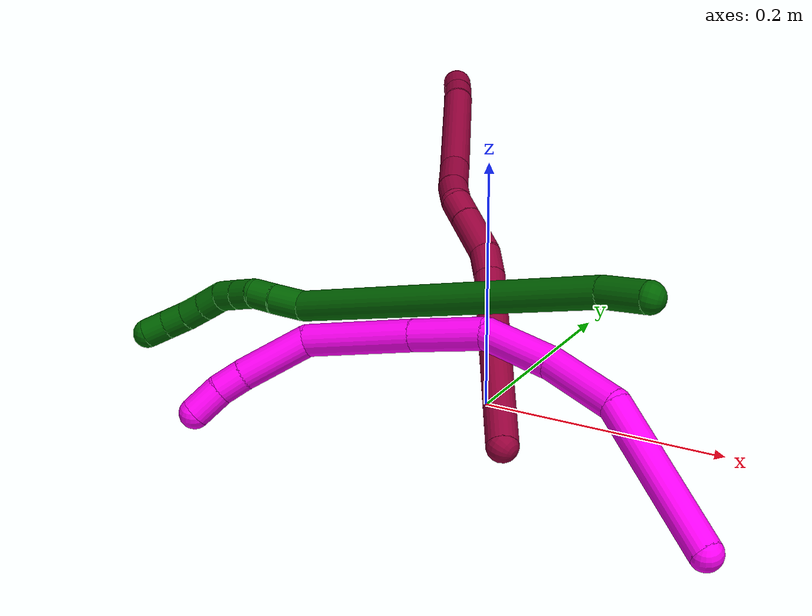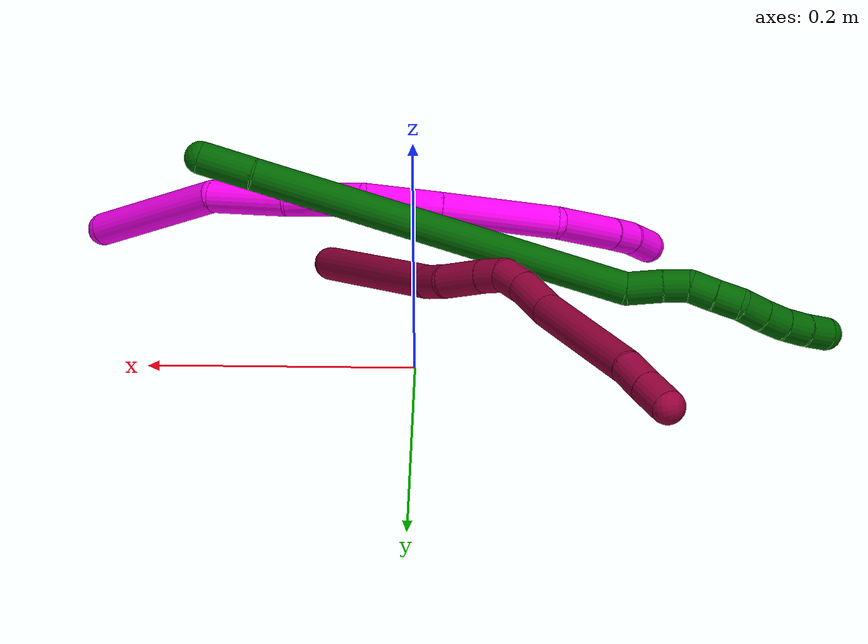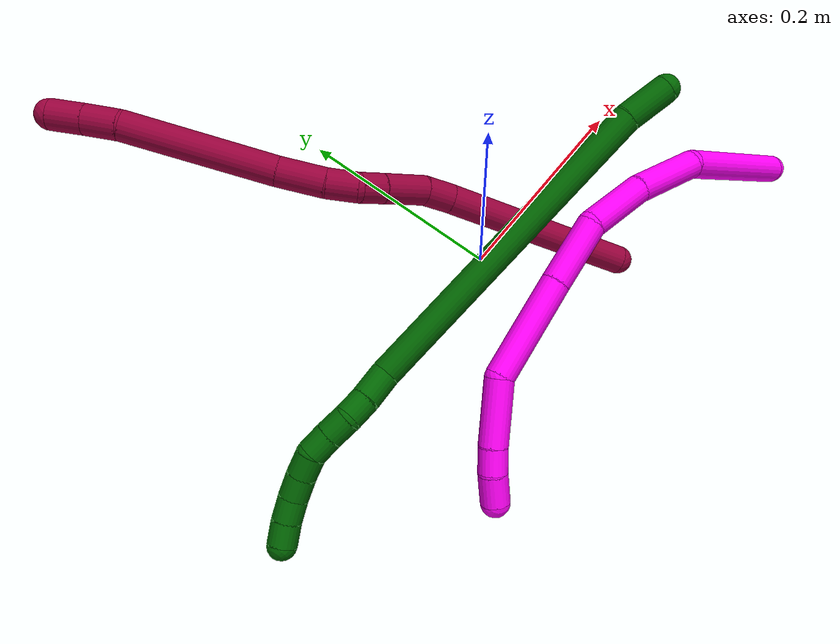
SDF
<sdf version="1.7">
 <world name="default">
  <model name="6">
   <static>0</static>
   <link name="6">
    <collision name="collision-cylinder-e_1_1_4">
     <pose>-0.003329 -0.010603 -0.01772 2.60238 -0.159858 -0.564267</pose>
     <geometry><cylinder><radius>0.0125</radius><length>0.041833</length></cylinder></geometry>
     <surface>
      <friction><ode><mu>1.16</mu><mu2>1.16</mu2><slip1>0</slip1><slip2>0</slip2></ode></friction>
      <contact><ode><kp>1e+06</kp><kd>1</kd><max_vel>0</max_vel><min_depth>0.001</min_depth></ode></contact>
     </surface>
    </collision>
    <visual name="visual-cylinder-e_1_1_4">
     <pose>-0.003329 -0.010603 -0.01772 2.60238 -0.159858 -0.564267</pose>
     <geometry><cylinder><radius>0.0125</radius><length>0.041833</length></cylinder></geometry>
     <material><ambient>0 0.392157 0.003922 1</ambient></material>
    </visual>
    <collision name="collision-cylinder-e_2_4_5">
     <pose>-0.049836 -0.081201 -0.160317 2.69372 -0.302114 -1.1783</pose>
     <geometry><cylinder><radius>0.0125</radius><length>0.290227</length></cylinder></geometry>
     <surface>
      <friction><ode><mu>1.16</mu><mu2>1.16</mu2><slip1>0</slip1><slip2>0</slip2></ode></friction>
      <contact><ode><kp>1e+06</kp><kd>1</kd><max_vel>0</max_vel><min_depth>0.001</min_depth></ode></contact>
     </surface>
    </collision>
    <visual name="visual-cylinder-e_2_4_5">
     <pose>-0.049836 -0.081201 -0.160317 2.69372 -0.302114 -1.1783</pose>
     <geometry><cylinder><radius>0.0125</radius><length>0.290227</length></cylinder></geometry>
     <material><ambient>0 0.392157 0.003922 1</ambient></material>
    </visual>
    <collision name="collision-cylinder-e_3_5_6">
     <pose>-0.094036 -0.143172 -0.298865 2.99809 -0.073921 -0.95028</pose>
     <geometry><cylinder><radius>0.0125</radius><length>0.027702</length></cylinder></geometry>
     <surface>
      <friction><ode><mu>1.16</mu><mu2>1.16</mu2><slip1>0</slip1><slip2>0</slip2></ode></friction>
      <contact><ode><kp>1e+06</kp><kd>1</kd><max_vel>0</max_vel><min_depth>0.001</min_depth></ode></contact>
     </surface>
    </collision>
    <visual name="visual-cylinder-e_3_5_6">
     <pose>-0.094036 -0.143172 -0.298865 2.99809 -0.073921 -0.95028</pose>
     <geometry><cylinder><radius>0.0125</radius><length>0.027702</length></cylinder></geometry>
     <material><ambient>0 0.392157 0.003922 1</ambient></material>
    </visual>
    <collision name="collision-cylinder-e_4_6_7">
     <pose>-0.095685 -0.147588 -0.322265 2.89585 -0.062396 -0.49505</pose>
     <geometry><cylinder><radius>0.0125</radius><length>0.020098</length></cylinder></geometry>
     <surface>
      <friction><ode><mu>1.16</mu><mu2>1.16</mu2><slip1>0</slip1><slip2>0</slip2></ode></friction>
      <contact><ode><kp>1e+06</kp><kd>1</kd><max_vel>0</max_vel><min_depth>0.001</min_depth></ode></contact>
     </surface>
    </collision>
    <visual name="visual-cylinder-e_4_6_7">
     <pose>-0.095685 -0.147588 -0.322265 2.89585 -0.062396 -0.49505</pose>
     <geometry><cylinder><radius>0.0125</radius><length>0.020098</length></cylinder></geometry>
     <material><ambient>0 0.392157 0.003922 1</ambient></material>
    </visual>
    <collision name="collision-cylinder-e_5_7_8">
     <pose>-0.099272 -0.1549 -0.34027 2.60959 -0.298965 -1.00992</pose>
     <geometry><cylinder><radius>0.0125</radius><length>0.020101</length></cylinder></geometry>
     <surface>
      <friction><ode><mu>1.16</mu><mu2>1.16</mu2><slip1>0</slip1><slip2>0</slip2></ode></friction>
      <contact><ode><kp>1e+06</kp><kd>1</kd><max_vel>0</max_vel><min_depth>0.001</min_depth></ode></contact>
     </surface>
    </collision>
    <visual name="visual-cylinder-e_5_7_8">
     <pose>-0.099272 -0.1549 -0.34027 2.60959 -0.298965 -1.00992</pose>
     <geometry><cylinder><radius>0.0125</radius><length>0.020101</length></cylinder></geometry>
     <material><ambient>0 0.392157 0.003922 1</ambient></material>
    </visual>
    <collision name="collision-cylinder-e_6_8_9">
     <pose>-0.105362 -0.164146 -0.357 2.66408 -0.317673 -1.16413</pose>
     <geometry><cylinder><radius>0.0125</radius><length>0.020037</length></cylinder></geometry>
     <surface>
      <friction><ode><mu>1.16</mu><mu2>1.16</mu2><slip1>0</slip1><slip2>0</slip2></ode></friction>
      <contact><ode><kp>1e+06</kp><kd>1</kd><max_vel>0</max_vel><min_depth>0.001</min_depth></ode></contact>
     </surface>
    </collision>
    <visual name="visual-cylinder-e_6_8_9">
     <pose>-0.105362 -0.164146 -0.357 2.66408 -0.317673 -1.16413</pose>
     <geometry><cylinder><radius>0.0125</radius><length>0.020037</length></cylinder></geometry>
     <material><ambient>0 0.392157 0.003922 1</ambient></material>
    </visual>
    <collision name="collision-cylinder-e_7_9_10">
     <pose>-0.114953 -0.17128 -0.372568 2.77153 -0.702509 -2.19714</pose>
     <geometry><cylinder><radius>0.0125</radius><length>0.02</length></cylinder></geometry>
     <surface>
      <friction><ode><mu>1.16</mu><mu2>1.16</mu2><slip1>0</slip1><slip2>0</slip2></ode></friction>
      <contact><ode><kp>1e+06</kp><kd>1</kd><max_vel>0</max_vel><min_depth>0.001</min_depth></ode></contact>
     </surface>
    </collision>
    <visual name="visual-cylinder-e_7_9_10">
     <pose>-0.114953 -0.17128 -0.372568 2.77153 -0.702509 -2.19714</pose>
     <geometry><cylinder><radius>0.0125</radius><length>0.02</length></cylinder></geometry>
     <material><ambient>0 0.392157 0.003922 1</ambient></material>
    </visual>
    <collision name="collision-cylinder-e_8_10_11">
     <pose>-0.127974 -0.17597 -0.386981 2.88303 -0.715556 -2.47229</pose>
     <geometry><cylinder><radius>0.0125</radius><length>0.02</length></cylinder></geometry>
     <surface>
      <friction><ode><mu>1.16</mu><mu2>1.16</mu2><slip1>0</slip1><slip2>0</slip2></ode></friction>
      <contact><ode><kp>1e+06</kp><kd>1</kd><max_vel>0</max_vel><min_depth>0.001</min_depth></ode></contact>
     </surface>
    </collision>
    <visual name="visual-cylinder-e_8_10_11">
     <pose>-0.127974 -0.17597 -0.386981 2.88303 -0.715556 -2.47229</pose>
     <geometry><cylinder><radius>0.0125</radius><length>0.02</length></cylinder></geometry>
     <material><ambient>0 0.392157 0.003922 1</ambient></material>
    </visual>
    <collision name="collision-cylinder-e_9_11_12">
     <pose>-0.140781 -0.178687 -0.402047 3.04062 -0.674609 -2.8554</pose>
     <geometry><cylinder><radius>0.0125</radius><length>0.02</length></cylinder></geometry>
     <surface>
      <friction><ode><mu>1.16</mu><mu2>1.16</mu2><slip1>0</slip1><slip2>0</slip2></ode></friction>
      <contact><ode><kp>1e+06</kp><kd>1</kd><max_vel>0</max_vel><min_depth>0.001</min_depth></ode></contact>
     </surface>
    </collision>
    <visual name="visual-cylinder-e_9_11_12">
     <pose>-0.140781 -0.178687 -0.402047 3.04062 -0.674609 -2.8554</pose>
     <geometry><cylinder><radius>0.0125</radius><length>0.02</length></cylinder></geometry>
     <material><ambient>0 0.392157 0.003922 1</ambient></material>
    </visual>
    <collision name="collision-cylinder-e_10_12_2">
     <pose>-0.153416 -0.179161 -0.417503 -3.10088 -0.693047 3.02894</pose>
     <geometry><cylinder><radius>0.0125</radius><length>0.02</length></cylinder></geometry>
     <surface>
      <friction><ode><mu>1.16</mu><mu2>1.16</mu2><slip1>0</slip1><slip2>0</slip2></ode></friction>
      <contact><ode><kp>1e+06</kp><kd>1</kd><max_vel>0</max_vel><min_depth>0.001</min_depth></ode></contact>
     </surface>
    </collision>
    <visual name="visual-cylinder-e_10_12_2">
     <pose>-0.153416 -0.179161 -0.417503 -3.10088 -0.693047 3.02894</pose>
     <geometry><cylinder><radius>0.0125</radius><length>0.02</length></cylinder></geometry>
     <material><ambient>0 0.392157 0.003922 1</ambient></material>
    </visual>
    <collision name="collision-sphere-2">
     <pose>-0.159805 -0.178848 -0.42519 0 -0 0</pose>
     <geometry><sphere><radius>0.0125</radius></sphere></geometry>
     <surface>
      <friction><ode><mu>1.16</mu><mu2>1.16</mu2><slip1>0</slip1><slip2>0</slip2></ode></friction>
      <contact><ode><kp>1e+06</kp><kd>1</kd><max_vel>0</max_vel><min_depth>0.001</min_depth></ode></contact>
     </surface>
    </collision>
    <visual name="visual-sphere-2">
     <pose>-0.159805 -0.178848 -0.42519 0 -0 0</pose>
     <geometry><sphere><radius>0.0125</radius></sphere></geometry>
     <material><ambient>0 0.392157 0.003922 1</ambient></material>
    </visual>
    <collision name="collision-sphere-12">
     <pose>-0.147027 -0.179475 -0.409817 0 -0 0</pose>
     <geometry><sphere><radius>0.0125</radius></sphere></geometry>
     <surface>
      <friction><ode><mu>1.16</mu><mu2>1.16</mu2><slip1>0</slip1><slip2>0</slip2></ode></friction>
      <contact><ode><kp>1e+06</kp><kd>1</kd><max_vel>0</max_vel><min_depth>0.001</min_depth></ode></contact>
     </surface>
    </collision>
    <visual name="visual-sphere-12">
     <pose>-0.147027 -0.179475 -0.409817 0 -0 0</pose>
     <geometry><sphere><radius>0.0125</radius></sphere></geometry>
     <material><ambient>0 0.392157 0.003922 1</ambient></material>
    </visual>
    <collision name="collision-sphere-11">
     <pose>-0.134535 -0.1779 -0.394277 0 -0 0</pose>
     <geometry><sphere><radius>0.0125</radius></sphere></geometry>
     <surface>
      <friction><ode><mu>1.16</mu><mu2>1.16</mu2><slip1>0</slip1><slip2>0</slip2></ode></friction>
      <contact><ode><kp>1e+06</kp><kd>1</kd><max_vel>0</max_vel><min_depth>0.001</min_depth></ode></contact>
     </surface>
    </collision>
    <visual name="visual-sphere-11">
     <pose>-0.134535 -0.1779 -0.394277 0 -0 0</pose>
     <geometry><sphere><radius>0.0125</radius></sphere></geometry>
     <material><ambient>0 0.392157 0.003922 1</ambient></material>
    </visual>
    <collision name="collision-sphere-10">
     <pose>-0.121414 -0.17404 -0.379684 0 -0 0</pose>
     <geometry><sphere><radius>0.0125</radius></sphere></geometry>
     <surface>
      <friction><ode><mu>1.16</mu><mu2>1.16</mu2><slip1>0</slip1><slip2>0</slip2></ode></friction>
      <contact><ode><kp>1e+06</kp><kd>1</kd><max_vel>0</max_vel><min_depth>0.001</min_depth></ode></contact>
     </surface>
    </collision>
    <visual name="visual-sphere-10">
     <pose>-0.121414 -0.17404 -0.379684 0 -0 0</pose>
     <geometry><sphere><radius>0.0125</radius></sphere></geometry>
     <material><ambient>0 0.392157 0.003922 1</ambient></material>
    </visual>
    <collision name="collision-sphere-9">
     <pose>-0.108491 -0.16852 -0.365453 0 -0 0</pose>
     <geometry><sphere><radius>0.0125</radius></sphere></geometry>
     <surface>
      <friction><ode><mu>1.16</mu><mu2>1.16</mu2><slip1>0</slip1><slip2>0</slip2></ode></friction>
      <contact><ode><kp>1e+06</kp><kd>1</kd><max_vel>0</max_vel><min_depth>0.001</min_depth></ode></contact>
     </surface>
    </collision>
    <visual name="visual-sphere-9">
     <pose>-0.108491 -0.16852 -0.365453 0 -0 0</pose>
     <geometry><sphere><radius>0.0125</radius></sphere></geometry>
     <material><ambient>0 0.392157 0.003922 1</ambient></material>
    </visual>
    <collision name="collision-sphere-4">
     <pose>-0.006659 -0.021206 -0.03544 0 -0 0</pose>
     <geometry><sphere><radius>0.0125</radius></sphere></geometry>
     <surface>
      <friction><ode><mu>1.16</mu><mu2>1.16</mu2><slip1>0</slip1><slip2>0</slip2></ode></friction>
      <contact><ode><kp>1e+06</kp><kd>1</kd><max_vel>0</max_vel><min_depth>0.001</min_depth></ode></contact>
     </surface>
    </collision>
    <visual name="visual-sphere-4">
     <pose>-0.006659 -0.021206 -0.03544 0 -0 0</pose>
     <geometry><sphere><radius>0.0125</radius></sphere></geometry>
     <material><ambient>0 0.392157 0.003922 1</ambient></material>
    </visual>
    <collision name="collision-sphere-1">
     <geometry><sphere><radius>0.0125</radius></sphere></geometry>
     <surface>
      <friction><ode><mu>1.16</mu><mu2>1.16</mu2><slip1>0</slip1><slip2>0</slip2></ode></friction>
      <contact><ode><kp>1e+06</kp><kd>1</kd><max_vel>0</max_vel><min_depth>0.001</min_depth></ode></contact>
     </surface>
    </collision>
    <visual name="visual-sphere-1">
     <geometry><sphere><radius>0.0125</radius></sphere></geometry>
     <material><ambient>0 0.392157 0.003922 1</ambient></material>
    </visual>
    <collision name="collision-sphere-8">
     <pose>-0.102232 -0.159772 -0.348547 0 -0 0</pose>
     <geometry><sphere><radius>0.0125</radius></sphere></geometry>
     <surface>
      <friction><ode><mu>1.16</mu><mu2>1.16</mu2><slip1>0</slip1><slip2>0</slip2></ode></friction>
      <contact><ode><kp>1e+06</kp><kd>1</kd><max_vel>0</max_vel><min_depth>0.001</min_depth></ode></contact>
     </surface>
    </collision>
    <visual name="visual-sphere-8">
     <pose>-0.102232 -0.159772 -0.348547 0 -0 0</pose>
     <geometry><sphere><radius>0.0125</radius></sphere></geometry>
     <material><ambient>0 0.392157 0.003922 1</ambient></material>
    </visual>
    <collision name="collision-sphere-5">
     <pose>-0.093013 -0.141197 -0.285194 0 -0 0</pose>
     <geometry><sphere><radius>0.0125</radius></sphere></geometry>
     <surface>
      <friction><ode><mu>1.16</mu><mu2>1.16</mu2><slip1>0</slip1><slip2>0</slip2></ode></friction>
      <contact><ode><kp>1e+06</kp><kd>1</kd><max_vel>0</max_vel><min_depth>0.001</min_depth></ode></contact>
     </surface>
    </collision>
    <visual name="visual-sphere-5">
     <pose>-0.093013 -0.141197 -0.285194 0 -0 0</pose>
     <geometry><sphere><radius>0.0125</radius></sphere></geometry>
     <material><ambient>0 0.392157 0.003922 1</ambient></material>
    </visual>
    <collision name="collision-sphere-6">
     <pose>-0.095059 -0.145148 -0.312537 0 -0 0</pose>
     <geometry><sphere><radius>0.0125</radius></sphere></geometry>
     <surface>
      <friction><ode><mu>1.16</mu><mu2>1.16</mu2><slip1>0</slip1><slip2>0</slip2></ode></friction>
      <contact><ode><kp>1e+06</kp><kd>1</kd><max_vel>0</max_vel><min_depth>0.001</min_depth></ode></contact>
     </surface>
    </collision>
    <visual name="visual-sphere-6">
     <pose>-0.095059 -0.145148 -0.312537 0 -0 0</pose>
     <geometry><sphere><radius>0.0125</radius></sphere></geometry>
     <material><ambient>0 0.392157 0.003922 1</ambient></material>
    </visual>
    <collision name="collision-sphere-7">
     <pose>-0.096312 -0.150028 -0.331993 0 -0 0</pose>
     <geometry><sphere><radius>0.0125</radius></sphere></geometry>
     <surface>
      <friction><ode><mu>1.16</mu><mu2>1.16</mu2><slip1>0</slip1><slip2>0</slip2></ode></friction>
      <contact><ode><kp>1e+06</kp><kd>1</kd><max_vel>0</max_vel><min_depth>0.001</min_depth></ode></contact>
     </surface>
    </collision>
    <visual name="visual-sphere-7">
     <pose>-0.096312 -0.150028 -0.331993 0 -0 0</pose>
     <geometry><sphere><radius>0.0125</radius></sphere></geometry>
     <material><ambient>0 0.392157 0.003922 1</ambient></material>
    </visual>
    <inertial>
     <pose>-0.067961 -0.102895 -0.215202 0 -0 0</pose>
     <mass>0.5</mass>
     <inertia>
      <ixx>-0.001076</ixx>
      <ixy>0</ixy>
      <ixz>0</ixz>
      <iyy>-0.002298</iyy>
      <iyz>0</iyz>
      <izz>0.001436</izz>
     </inertia>
    </inertial>
   </link>
   <pose>0.160338 -0.067012 0.142835 2.0609 -1.16943 1.2824</pose>
  </model>
  <model name="8">
   <static>0</static>
   <link name="8">
    <collision name="collision-cylinder-e_1_1_4">
     <pose>-0.046412 0.035783 0.06191 -0.524074 -0.575716 0.158488</pose>
     <geometry><cylinder><radius>0.0125</radius><length>0.170498</length></cylinder></geometry>
     <surface>
      <friction><ode><mu>1.16</mu><mu2>1.16</mu2><slip1>0</slip1><slip2>0</slip2></ode></friction>
      <contact><ode><kp>1e+06</kp><kd>1</kd><max_vel>0</max_vel><min_depth>0.001</min_depth></ode></contact>
     </surface>
    </collision>
    <visual name="visual-cylinder-e_1_1_4">
     <pose>-0.046412 0.035783 0.06191 -0.524074 -0.575716 0.158488</pose>
     <geometry><cylinder><radius>0.0125</radius><length>0.170498</length></cylinder></geometry>
     <material><ambient>0.584314 0 0.227451 1</ambient></material>
    </visual>
    <collision name="collision-cylinder-e_2_4_5">
     <pose>-0.09827 0.077132 0.133666 -0.514473 -0.448624 0.119893</pose>
     <geometry><cylinder><radius>0.0125</radius><length>0.025106</length></cylinder></geometry>
     <surface>
      <friction><ode><mu>1.16</mu><mu2>1.16</mu2><slip1>0</slip1><slip2>0</slip2></ode></friction>
      <contact><ode><kp>1e+06</kp><kd>1</kd><max_vel>0</max_vel><min_depth>0.001</min_depth></ode></contact>
     </surface>
    </collision>
    <visual name="visual-cylinder-e_2_4_5">
     <pose>-0.09827 0.077132 0.133666 -0.514473 -0.448624 0.119893</pose>
     <geometry><cylinder><radius>0.0125</radius><length>0.025106</length></cylinder></geometry>
     <material><ambient>0.584314 0 0.227451 1</ambient></material>
    </visual>
    <collision name="collision-cylinder-e_3_5_6">
     <pose>-0.108489 0.088831 0.161389 -0.330537 -0.247467 0.041481</pose>
     <geometry><cylinder><radius>0.0125</radius><length>0.038986</length></cylinder></geometry>
     <surface>
      <friction><ode><mu>1.16</mu><mu2>1.16</mu2><slip1>0</slip1><slip2>0</slip2></ode></friction>
      <contact><ode><kp>1e+06</kp><kd>1</kd><max_vel>0</max_vel><min_depth>0.001</min_depth></ode></contact>
     </surface>
    </collision>
    <visual name="visual-cylinder-e_3_5_6">
     <pose>-0.108489 0.088831 0.161389 -0.330537 -0.247467 0.041481</pose>
     <geometry><cylinder><radius>0.0125</radius><length>0.038986</length></cylinder></geometry>
     <material><ambient>0.584314 0 0.227451 1</ambient></material>
    </visual>
    <collision name="collision-cylinder-e_4_6_7">
     <pose>-0.116274 0.097921 0.188805 -0.300492 -0.292763 0.044632</pose>
     <geometry><cylinder><radius>0.0125</radius><length>0.020862</length></cylinder></geometry>
     <surface>
      <friction><ode><mu>1.16</mu><mu2>1.16</mu2><slip1>0</slip1><slip2>0</slip2></ode></friction>
      <contact><ode><kp>1e+06</kp><kd>1</kd><max_vel>0</max_vel><min_depth>0.001</min_depth></ode></contact>
     </surface>
    </collision>
    <visual name="visual-cylinder-e_4_6_7">
     <pose>-0.116274 0.097921 0.188805 -0.300492 -0.292763 0.044632</pose>
     <geometry><cylinder><radius>0.0125</radius><length>0.020862</length></cylinder></geometry>
     <material><ambient>0.584314 0 0.227451 1</ambient></material>
    </visual>
    <collision name="collision-cylinder-e_5_7_8">
     <pose>-0.127831 0.102587 0.207986 -0.175522 -0.71761 0.065973</pose>
     <geometry><cylinder><radius>0.0125</radius><length>0.025994</length></cylinder></geometry>
     <surface>
      <friction><ode><mu>1.16</mu><mu2>1.16</mu2><slip1>0</slip1><slip2>0</slip2></ode></friction>
      <contact><ode><kp>1e+06</kp><kd>1</kd><max_vel>0</max_vel><min_depth>0.001</min_depth></ode></contact>
     </surface>
    </collision>
    <visual name="visual-cylinder-e_5_7_8">
     <pose>-0.127831 0.102587 0.207986 -0.175522 -0.71761 0.065973</pose>
     <geometry><cylinder><radius>0.0125</radius><length>0.025994</length></cylinder></geometry>
     <material><ambient>0.584314 0 0.227451 1</ambient></material>
    </visual>
    <collision name="collision-cylinder-e_6_8_9">
     <pose>-0.151126 0.107424 0.230263 -0.242575 -0.847676 0.109875</pose>
     <geometry><cylinder><radius>0.0125</radius><length>0.039342</length></cylinder></geometry>
     <surface>
      <friction><ode><mu>1.16</mu><mu2>1.16</mu2><slip1>0</slip1><slip2>0</slip2></ode></friction>
      <contact><ode><kp>1e+06</kp><kd>1</kd><max_vel>0</max_vel><min_depth>0.001</min_depth></ode></contact>
     </surface>
    </collision>
    <visual name="visual-cylinder-e_6_8_9">
     <pose>-0.151126 0.107424 0.230263 -0.242575 -0.847676 0.109875</pose>
     <geometry><cylinder><radius>0.0125</radius><length>0.039342</length></cylinder></geometry>
     <material><ambient>0.584314 0 0.227451 1</ambient></material>
    </visual>
    <collision name="collision-cylinder-e_7_9_10">
     <pose>-0.209073 0.126572 0.284397 -0.368447 -0.770746 0.15089</pose>
     <geometry><cylinder><radius>0.0125</radius><length>0.124015</length></cylinder></geometry>
     <surface>
      <friction><ode><mu>1.16</mu><mu2>1.16</mu2><slip1>0</slip1><slip2>0</slip2></ode></friction>
      <contact><ode><kp>1e+06</kp><kd>1</kd><max_vel>0</max_vel><min_depth>0.001</min_depth></ode></contact>
     </surface>
    </collision>
    <visual name="visual-cylinder-e_7_9_10">
     <pose>-0.209073 0.126572 0.284397 -0.368447 -0.770746 0.15089</pose>
     <geometry><cylinder><radius>0.0125</radius><length>0.124015</length></cylinder></geometry>
     <material><ambient>0.584314 0 0.227451 1</ambient></material>
    </visual>
    <collision name="collision-cylinder-e_8_10_11">
     <pose>-0.26277 0.143627 0.334898 -0.114322 -0.858699 0.052385</pose>
     <geometry><cylinder><radius>0.0125</radius><length>0.027736</length></cylinder></geometry>
     <surface>
      <friction><ode><mu>1.16</mu><mu2>1.16</mu2><slip1>0</slip1><slip2>0</slip2></ode></friction>
      <contact><ode><kp>1e+06</kp><kd>1</kd><max_vel>0</max_vel><min_depth>0.001</min_depth></ode></contact>
     </surface>
    </collision>
    <visual name="visual-cylinder-e_8_10_11">
     <pose>-0.26277 0.143627 0.334898 -0.114322 -0.858699 0.052385</pose>
     <geometry><cylinder><radius>0.0125</radius><length>0.027736</length></cylinder></geometry>
     <material><ambient>0.584314 0 0.227451 1</ambient></material>
    </visual>
    <collision name="collision-cylinder-e_9_11_2">
     <pose>-0.283396 0.14562 0.353122 -0.103638 -0.82954 0.045666</pose>
     <geometry><cylinder><radius>0.0125</radius><length>0.027461</length></cylinder></geometry>
     <surface>
      <friction><ode><mu>1.16</mu><mu2>1.16</mu2><slip1>0</slip1><slip2>0</slip2></ode></friction>
      <contact><ode><kp>1e+06</kp><kd>1</kd><max_vel>0</max_vel><min_depth>0.001</min_depth></ode></contact>
     </surface>
    </collision>
    <visual name="visual-cylinder-e_9_11_2">
     <pose>-0.283396 0.14562 0.353122 -0.103638 -0.82954 0.045666</pose>
     <geometry><cylinder><radius>0.0125</radius><length>0.027461</length></cylinder></geometry>
     <material><ambient>0.584314 0 0.227451 1</ambient></material>
    </visual>
    <collision name="collision-sphere-2">
     <pose>-0.293523 0.146579 0.362343 0 -0 0</pose>
     <geometry><sphere><radius>0.0125</radius></sphere></geometry>
     <surface>
      <friction><ode><mu>1.16</mu><mu2>1.16</mu2><slip1>0</slip1><slip2>0</slip2></ode></friction>
      <contact><ode><kp>1e+06</kp><kd>1</kd><max_vel>0</max_vel><min_depth>0.001</min_depth></ode></contact>
     </surface>
    </collision>
    <visual name="visual-sphere-2">
     <pose>-0.293523 0.146579 0.362343 0 -0 0</pose>
     <geometry><sphere><radius>0.0125</radius></sphere></geometry>
     <material><ambient>0.584314 0 0.227451 1</ambient></material>
    </visual>
    <collision name="collision-sphere-11">
     <pose>-0.273268 0.144661 0.3439 0 -0 0</pose>
     <geometry><sphere><radius>0.0125</radius></sphere></geometry>
     <surface>
      <friction><ode><mu>1.16</mu><mu2>1.16</mu2><slip1>0</slip1><slip2>0</slip2></ode></friction>
      <contact><ode><kp>1e+06</kp><kd>1</kd><max_vel>0</max_vel><min_depth>0.001</min_depth></ode></contact>
     </surface>
    </collision>
    <visual name="visual-sphere-11">
     <pose>-0.273268 0.144661 0.3439 0 -0 0</pose>
     <geometry><sphere><radius>0.0125</radius></sphere></geometry>
     <material><ambient>0.584314 0 0.227451 1</ambient></material>
    </visual>
    <collision name="collision-sphere-10">
     <pose>-0.252272 0.142593 0.325896 0 -0 0</pose>
     <geometry><sphere><radius>0.0125</radius></sphere></geometry>
     <surface>
      <friction><ode><mu>1.16</mu><mu2>1.16</mu2><slip1>0</slip1><slip2>0</slip2></ode></friction>
      <contact><ode><kp>1e+06</kp><kd>1</kd><max_vel>0</max_vel><min_depth>0.001</min_depth></ode></contact>
     </surface>
    </collision>
    <visual name="visual-sphere-10">
     <pose>-0.252272 0.142593 0.325896 0 -0 0</pose>
     <geometry><sphere><radius>0.0125</radius></sphere></geometry>
     <material><ambient>0.584314 0 0.227451 1</ambient></material>
    </visual>
    <collision name="collision-sphere-9">
     <pose>-0.165875 0.11055 0.242899 0 -0 0</pose>
     <geometry><sphere><radius>0.0125</radius></sphere></geometry>
     <surface>
      <friction><ode><mu>1.16</mu><mu2>1.16</mu2><slip1>0</slip1><slip2>0</slip2></ode></friction>
      <contact><ode><kp>1e+06</kp><kd>1</kd><max_vel>0</max_vel><min_depth>0.001</min_depth></ode></contact>
     </surface>
    </collision>
    <visual name="visual-sphere-9">
     <pose>-0.165875 0.11055 0.242899 0 -0 0</pose>
     <geometry><sphere><radius>0.0125</radius></sphere></geometry>
     <material><ambient>0.584314 0 0.227451 1</ambient></material>
    </visual>
    <collision name="collision-sphere-4">
     <pose>-0.092825 0.071566 0.12382 0 -0 0</pose>
     <geometry><sphere><radius>0.0125</radius></sphere></geometry>
     <surface>
      <friction><ode><mu>1.16</mu><mu2>1.16</mu2><slip1>0</slip1><slip2>0</slip2></ode></friction>
      <contact><ode><kp>1e+06</kp><kd>1</kd><max_vel>0</max_vel><min_depth>0.001</min_depth></ode></contact>
     </surface>
    </collision>
    <visual name="visual-sphere-4">
     <pose>-0.092825 0.071566 0.12382 0 -0 0</pose>
     <geometry><sphere><radius>0.0125</radius></sphere></geometry>
     <material><ambient>0.584314 0 0.227451 1</ambient></material>
    </visual>
    <collision name="collision-sphere-1">
     <geometry><sphere><radius>0.0125</radius></sphere></geometry>
     <surface>
      <friction><ode><mu>1.16</mu><mu2>1.16</mu2><slip1>0</slip1><slip2>0</slip2></ode></friction>
      <contact><ode><kp>1e+06</kp><kd>1</kd><max_vel>0</max_vel><min_depth>0.001</min_depth></ode></contact>
     </surface>
    </collision>
    <visual name="visual-sphere-1">
     <geometry><sphere><radius>0.0125</radius></sphere></geometry>
     <material><ambient>0.584314 0 0.227451 1</ambient></material>
    </visual>
    <collision name="collision-sphere-8">
     <pose>-0.136378 0.104297 0.217628 0 -0 0</pose>
     <geometry><sphere><radius>0.0125</radius></sphere></geometry>
     <surface>
      <friction><ode><mu>1.16</mu><mu2>1.16</mu2><slip1>0</slip1><slip2>0</slip2></ode></friction>
      <contact><ode><kp>1e+06</kp><kd>1</kd><max_vel>0</max_vel><min_depth>0.001</min_depth></ode></contact>
     </surface>
    </collision>
    <visual name="visual-sphere-8">
     <pose>-0.136378 0.104297 0.217628 0 -0 0</pose>
     <geometry><sphere><radius>0.0125</radius></sphere></geometry>
     <material><ambient>0.584314 0 0.227451 1</ambient></material>
    </visual>
    <collision name="collision-sphere-5">
     <pose>-0.103714 0.082697 0.143513 0 -0 0</pose>
     <geometry><sphere><radius>0.0125</radius></sphere></geometry>
     <surface>
      <friction><ode><mu>1.16</mu><mu2>1.16</mu2><slip1>0</slip1><slip2>0</slip2></ode></friction>
      <contact><ode><kp>1e+06</kp><kd>1</kd><max_vel>0</max_vel><min_depth>0.001</min_depth></ode></contact>
     </surface>
    </collision>
    <visual name="visual-sphere-5">
     <pose>-0.103714 0.082697 0.143513 0 -0 0</pose>
     <geometry><sphere><radius>0.0125</radius></sphere></geometry>
     <material><ambient>0.584314 0 0.227451 1</ambient></material>
    </visual>
    <collision name="collision-sphere-6">
     <pose>-0.113264 0.094965 0.179265 0 -0 0</pose>
     <geometry><sphere><radius>0.0125</radius></sphere></geometry>
     <surface>
      <friction><ode><mu>1.16</mu><mu2>1.16</mu2><slip1>0</slip1><slip2>0</slip2></ode></friction>
      <contact><ode><kp>1e+06</kp><kd>1</kd><max_vel>0</max_vel><min_depth>0.001</min_depth></ode></contact>
     </surface>
    </collision>
    <visual name="visual-sphere-6">
     <pose>-0.113264 0.094965 0.179265 0 -0 0</pose>
     <geometry><sphere><radius>0.0125</radius></sphere></geometry>
     <material><ambient>0.584314 0 0.227451 1</ambient></material>
    </visual>
    <collision name="collision-sphere-7">
     <pose>-0.119285 0.100877 0.198345 0 -0 0</pose>
     <geometry><sphere><radius>0.0125</radius></sphere></geometry>
     <surface>
      <friction><ode><mu>1.16</mu><mu2>1.16</mu2><slip1>0</slip1><slip2>0</slip2></ode></friction>
      <contact><ode><kp>1e+06</kp><kd>1</kd><max_vel>0</max_vel><min_depth>0.001</min_depth></ode></contact>
     </surface>
    </collision>
    <visual name="visual-sphere-7">
     <pose>-0.119285 0.100877 0.198345 0 -0 0</pose>
     <geometry><sphere><radius>0.0125</radius></sphere></geometry>
     <material><ambient>0.584314 0 0.227451 1</ambient></material>
    </visual>
    <inertial>
     <pose>-0.134606 0.088231 0.185726 0 -0 0</pose>
     <mass>0.5</mass>
     <inertia>
      <ixx>0.000535</ixx>
      <ixy>0</ixy>
      <ixz>0</ixz>
      <iyy>0.000644</iyy>
      <iyz>0</iyz>
      <izz>0.000161</izz>
     </inertia>
    </inertial>
   </link>
   <pose>0.066624 -0.105129 0.022585 1.27787 -0.279563 -1.72611</pose>
  </model>
  <model name="10">
   <static>0</static>
   <link name="10">
    <collision name="collision-cylinder-e_1_1_4">
     <pose>-0.034121 0.04815 0.018748 -1.19949 -0.583619 0.405147</pose>
     <geometry><cylinder><radius>0.0125</radius><length>0.123841</length></cylinder></geometry>
     <surface>
      <friction><ode><mu>1.16</mu><mu2>1.16</mu2><slip1>0</slip1><slip2>0</slip2></ode></friction>
      <contact><ode><kp>1e+06</kp><kd>1</kd><max_vel>0</max_vel><min_depth>0.001</min_depth></ode></contact>
     </surface>
    </collision>
    <visual name="visual-cylinder-e_1_1_4">
     <pose>-0.034121 0.04815 0.018748 -1.19949 -0.583619 0.405147</pose>
     <geometry><cylinder><radius>0.0125</radius><length>0.123841</length></cylinder></geometry>
     <material><ambient>1 0 0.964706 1</ambient></material>
    </visual>
    <collision name="collision-cylinder-e_2_4_5">
     <pose>-0.09192 0.116662 0.036258 -1.63151 -0.85961 0.906542</pose>
     <geometry><cylinder><radius>0.0125</radius><length>0.062508</length></cylinder></geometry>
     <surface>
      <friction><ode><mu>1.16</mu><mu2>1.16</mu2><slip1>0</slip1><slip2>0</slip2></ode></friction>
      <contact><ode><kp>1e+06</kp><kd>1</kd><max_vel>0</max_vel><min_depth>0.001</min_depth></ode></contact>
     </surface>
    </collision>
    <visual name="visual-cylinder-e_2_4_5">
     <pose>-0.09192 0.116662 0.036258 -1.63151 -0.85961 0.906542</pose>
     <geometry><cylinder><radius>0.0125</radius><length>0.062508</length></cylinder></geometry>
     <material><ambient>1 0 0.964706 1</ambient></material>
    </visual>
    <collision name="collision-cylinder-e_3_5_6">
     <pose>-0.141111 0.15205 0.033783 -1.65297 -1.0371 1.10937</pose>
     <geometry><cylinder><radius>0.0125</radius><length>0.059268</length></cylinder></geometry>
     <surface>
      <friction><ode><mu>1.16</mu><mu2>1.16</mu2><slip1>0</slip1><slip2>0</slip2></ode></friction>
      <contact><ode><kp>1e+06</kp><kd>1</kd><max_vel>0</max_vel><min_depth>0.001</min_depth></ode></contact>
     </surface>
    </collision>
    <visual name="visual-cylinder-e_3_5_6">
     <pose>-0.141111 0.15205 0.033783 -1.65297 -1.0371 1.10937</pose>
     <geometry><cylinder><radius>0.0125</radius><length>0.059268</length></cylinder></geometry>
     <material><ambient>1 0 0.964706 1</ambient></material>
    </visual>
    <collision name="collision-cylinder-e_4_6_7">
     <pose>-0.194546 0.172376 0.024398 -2.56474 -1.23578 2.35066</pose>
     <geometry><cylinder><radius>0.0125</radius><length>0.059133</length></cylinder></geometry>
     <surface>
      <friction><ode><mu>1.16</mu><mu2>1.16</mu2><slip1>0</slip1><slip2>0</slip2></ode></friction>
      <contact><ode><kp>1e+06</kp><kd>1</kd><max_vel>0</max_vel><min_depth>0.001</min_depth></ode></contact>
     </surface>
    </collision>
    <visual name="visual-cylinder-e_4_6_7">
     <pose>-0.194546 0.172376 0.024398 -2.56474 -1.23578 2.35066</pose>
     <geometry><cylinder><radius>0.0125</radius><length>0.059133</length></cylinder></geometry>
     <material><ambient>1 0 0.964706 1</ambient></material>
    </visual>
    <collision name="collision-cylinder-e_5_7_8">
     <pose>-0.265042 0.184875 0.003284 -2.63486 -1.23561 2.44273</pose>
     <geometry><cylinder><radius>0.0125</radius><length>0.090164</length></cylinder></geometry>
     <surface>
      <friction><ode><mu>1.16</mu><mu2>1.16</mu2><slip1>0</slip1><slip2>0</slip2></ode></friction>
      <contact><ode><kp>1e+06</kp><kd>1</kd><max_vel>0</max_vel><min_depth>0.001</min_depth></ode></contact>
     </surface>
    </collision>
    <visual name="visual-cylinder-e_5_7_8">
     <pose>-0.265042 0.184875 0.003284 -2.63486 -1.23561 2.44273</pose>
     <geometry><cylinder><radius>0.0125</radius><length>0.090164</length></cylinder></geometry>
     <material><ambient>1 0 0.964706 1</ambient></material>
    </visual>
    <collision name="collision-cylinder-e_6_8_9">
     <pose>-0.331475 0.182838 -0.0217 2.4864 -1.00489 -2.0338</pose>
     <geometry><cylinder><radius>0.0125</radius><length>0.056532</length></cylinder></geometry>
     <surface>
      <friction><ode><mu>1.16</mu><mu2>1.16</mu2><slip1>0</slip1><slip2>0</slip2></ode></friction>
      <contact><ode><kp>1e+06</kp><kd>1</kd><max_vel>0</max_vel><min_depth>0.001</min_depth></ode></contact>
     </surface>
    </collision>
    <visual name="visual-cylinder-e_6_8_9">
     <pose>-0.331475 0.182838 -0.0217 2.4864 -1.00489 -2.0338</pose>
     <geometry><cylinder><radius>0.0125</radius><length>0.056532</length></cylinder></geometry>
     <material><ambient>1 0 0.964706 1</ambient></material>
    </visual>
    <collision name="collision-cylinder-e_7_9_10">
     <pose>-0.364146 0.169132 -0.038636 2.40383 -0.924546 -1.82195</pose>
     <geometry><cylinder><radius>0.0125</radius><length>0.022076</length></cylinder></geometry>
     <surface>
      <friction><ode><mu>1.16</mu><mu2>1.16</mu2><slip1>0</slip1><slip2>0</slip2></ode></friction>
      <contact><ode><kp>1e+06</kp><kd>1</kd><max_vel>0</max_vel><min_depth>0.001</min_depth></ode></contact>
     </surface>
    </collision>
    <visual name="visual-cylinder-e_7_9_10">
     <pose>-0.364146 0.169132 -0.038636 2.40383 -0.924546 -1.82195</pose>
     <geometry><cylinder><radius>0.0125</radius><length>0.022076</length></cylinder></geometry>
     <material><ambient>1 0 0.964706 1</ambient></material>
    </visual>
    <collision name="collision-cylinder-e_8_10_2">
     <pose>-0.381944 0.158039 -0.050673 2.39231 -0.74599 -1.56595</pose>
     <geometry><cylinder><radius>0.0125</radius><length>0.026478</length></cylinder></geometry>
     <surface>
      <friction><ode><mu>1.16</mu><mu2>1.16</mu2><slip1>0</slip1><slip2>0</slip2></ode></friction>
      <contact><ode><kp>1e+06</kp><kd>1</kd><max_vel>0</max_vel><min_depth>0.001</min_depth></ode></contact>
     </surface>
    </collision>
    <visual name="visual-cylinder-e_8_10_2">
     <pose>-0.381944 0.158039 -0.050673 2.39231 -0.74599 -1.56595</pose>
     <geometry><cylinder><radius>0.0125</radius><length>0.026478</length></cylinder></geometry>
     <material><ambient>1 0 0.964706 1</ambient></material>
    </visual>
    <collision name="collision-sphere-2">
     <pose>-0.390929 0.151416 -0.057792 0 -0 0</pose>
     <geometry><sphere><radius>0.0125</radius></sphere></geometry>
     <surface>
      <friction><ode><mu>1.16</mu><mu2>1.16</mu2><slip1>0</slip1><slip2>0</slip2></ode></friction>
      <contact><ode><kp>1e+06</kp><kd>1</kd><max_vel>0</max_vel><min_depth>0.001</min_depth></ode></contact>
     </surface>
    </collision>
    <visual name="visual-sphere-2">
     <pose>-0.390929 0.151416 -0.057792 0 -0 0</pose>
     <geometry><sphere><radius>0.0125</radius></sphere></geometry>
     <material><ambient>1 0 0.964706 1</ambient></material>
    </visual>
    <collision name="collision-sphere-10">
     <pose>-0.372958 0.164661 -0.043554 0 -0 0</pose>
     <geometry><sphere><radius>0.0125</radius></sphere></geometry>
     <surface>
      <friction><ode><mu>1.16</mu><mu2>1.16</mu2><slip1>0</slip1><slip2>0</slip2></ode></friction>
      <contact><ode><kp>1e+06</kp><kd>1</kd><max_vel>0</max_vel><min_depth>0.001</min_depth></ode></contact>
     </surface>
    </collision>
    <visual name="visual-sphere-10">
     <pose>-0.372958 0.164661 -0.043554 0 -0 0</pose>
     <geometry><sphere><radius>0.0125</radius></sphere></geometry>
     <material><ambient>1 0 0.964706 1</ambient></material>
    </visual>
    <collision name="collision-sphere-9">
     <pose>-0.355334 0.173603 -0.033717 0 -0 0</pose>
     <geometry><sphere><radius>0.0125</radius></sphere></geometry>
     <surface>
      <friction><ode><mu>1.16</mu><mu2>1.16</mu2><slip1>0</slip1><slip2>0</slip2></ode></friction>
      <contact><ode><kp>1e+06</kp><kd>1</kd><max_vel>0</max_vel><min_depth>0.001</min_depth></ode></contact>
     </surface>
    </collision>
    <visual name="visual-sphere-9">
     <pose>-0.355334 0.173603 -0.033717 0 -0 0</pose>
     <geometry><sphere><radius>0.0125</radius></sphere></geometry>
     <material><ambient>1 0 0.964706 1</ambient></material>
    </visual>
    <collision name="collision-sphere-4">
     <pose>-0.068242 0.096299 0.037496 0 -0 0</pose>
     <geometry><sphere><radius>0.0125</radius></sphere></geometry>
     <surface>
      <friction><ode><mu>1.16</mu><mu2>1.16</mu2><slip1>0</slip1><slip2>0</slip2></ode></friction>
      <contact><ode><kp>1e+06</kp><kd>1</kd><max_vel>0</max_vel><min_depth>0.001</min_depth></ode></contact>
     </surface>
    </collision>
    <visual name="visual-sphere-4">
     <pose>-0.068242 0.096299 0.037496 0 -0 0</pose>
     <geometry><sphere><radius>0.0125</radius></sphere></geometry>
     <material><ambient>1 0 0.964706 1</ambient></material>
    </visual>
    <collision name="collision-sphere-1">
     <geometry><sphere><radius>0.0125</radius></sphere></geometry>
     <surface>
      <friction><ode><mu>1.16</mu><mu2>1.16</mu2><slip1>0</slip1><slip2>0</slip2></ode></friction>
      <contact><ode><kp>1e+06</kp><kd>1</kd><max_vel>0</max_vel><min_depth>0.001</min_depth></ode></contact>
     </surface>
    </collision>
    <visual name="visual-sphere-1">
     <geometry><sphere><radius>0.0125</radius></sphere></geometry>
     <material><ambient>1 0 0.964706 1</ambient></material>
    </visual>
    <collision name="collision-sphere-8">
     <pose>-0.307615 0.192072 -0.009682 0 -0 0</pose>
     <geometry><sphere><radius>0.0125</radius></sphere></geometry>
     <surface>
      <friction><ode><mu>1.16</mu><mu2>1.16</mu2><slip1>0</slip1><slip2>0</slip2></ode></friction>
      <contact><ode><kp>1e+06</kp><kd>1</kd><max_vel>0</max_vel><min_depth>0.001</min_depth></ode></contact>
     </surface>
    </collision>
    <visual name="visual-sphere-8">
     <pose>-0.307615 0.192072 -0.009682 0 -0 0</pose>
     <geometry><sphere><radius>0.0125</radius></sphere></geometry>
     <material><ambient>1 0 0.964706 1</ambient></material>
    </visual>
    <collision name="collision-sphere-5">
     <pose>-0.115598 0.137025 0.035021 0 -0 0</pose>
     <geometry><sphere><radius>0.0125</radius></sphere></geometry>
     <surface>
      <friction><ode><mu>1.16</mu><mu2>1.16</mu2><slip1>0</slip1><slip2>0</slip2></ode></friction>
      <contact><ode><kp>1e+06</kp><kd>1</kd><max_vel>0</max_vel><min_depth>0.001</min_depth></ode></contact>
     </surface>
    </collision>
    <visual name="visual-sphere-5">
     <pose>-0.115598 0.137025 0.035021 0 -0 0</pose>
     <geometry><sphere><radius>0.0125</radius></sphere></geometry>
     <material><ambient>1 0 0.964706 1</ambient></material>
    </visual>
    <collision name="collision-sphere-6">
     <pose>-0.166624 0.167074 0.032546 0 -0 0</pose>
     <geometry><sphere><radius>0.0125</radius></sphere></geometry>
     <surface>
      <friction><ode><mu>1.16</mu><mu2>1.16</mu2><slip1>0</slip1><slip2>0</slip2></ode></friction>
      <contact><ode><kp>1e+06</kp><kd>1</kd><max_vel>0</max_vel><min_depth>0.001</min_depth></ode></contact>
     </surface>
    </collision>
    <visual name="visual-sphere-6">
     <pose>-0.166624 0.167074 0.032546 0 -0 0</pose>
     <geometry><sphere><radius>0.0125</radius></sphere></geometry>
     <material><ambient>1 0 0.964706 1</ambient></material>
    </visual>
    <collision name="collision-sphere-7">
     <pose>-0.222469 0.177678 0.01625 0 -0 0</pose>
     <geometry><sphere><radius>0.0125</radius></sphere></geometry>
     <surface>
      <friction><ode><mu>1.16</mu><mu2>1.16</mu2><slip1>0</slip1><slip2>0</slip2></ode></friction>
      <contact><ode><kp>1e+06</kp><kd>1</kd><max_vel>0</max_vel><min_depth>0.001</min_depth></ode></contact>
     </surface>
    </collision>
    <visual name="visual-sphere-7">
     <pose>-0.222469 0.177678 0.01625 0 -0 0</pose>
     <geometry><sphere><radius>0.0125</radius></sphere></geometry>
     <material><ambient>1 0 0.964706 1</ambient></material>
    </visual>
    <inertial>
     <pose>-0.181254 0.134767 0.009816 0 -0 0</pose>
     <mass>0.5</mass>
     <inertia>
      <ixx>0.000164</ixx>
      <ixy>0</ixy>
      <ixz>0</ixz>
      <iyy>0.000305</iyy>
      <iyz>0</iyz>
      <izz>5.9e-05</izz>
     </inertia>
    </inertial>
   </link>
   <pose>0.246223 -0.165311 0.011491 0.307342 0.026272 0.351796</pose>
  </model>
 </world>
</sdf>
